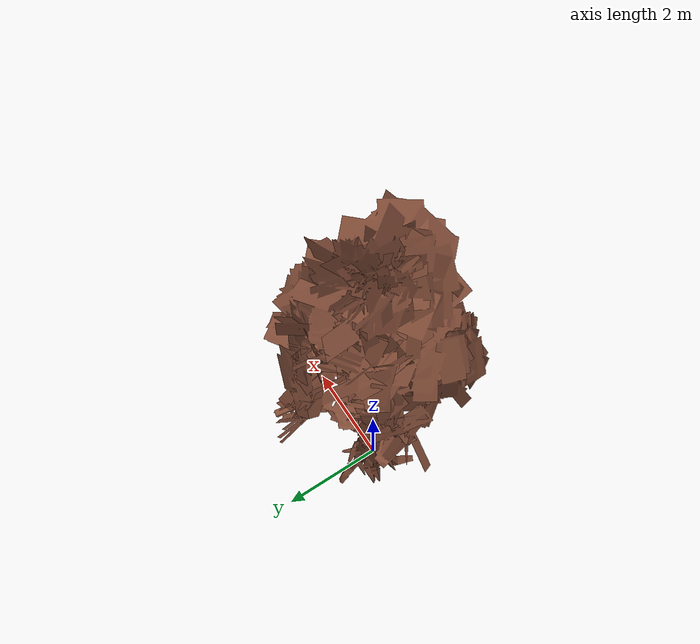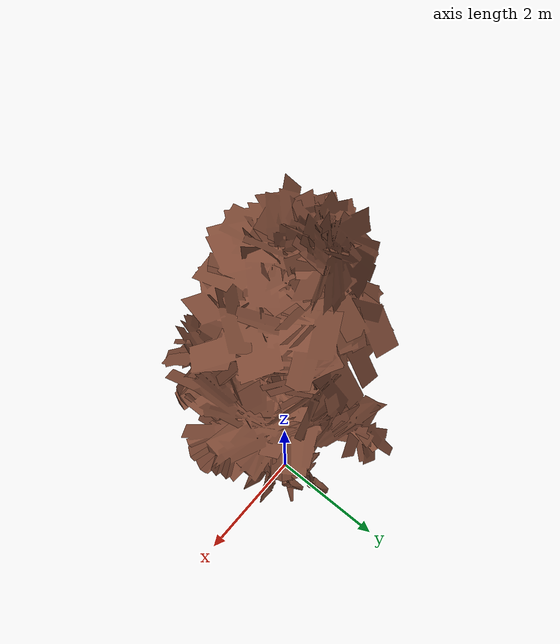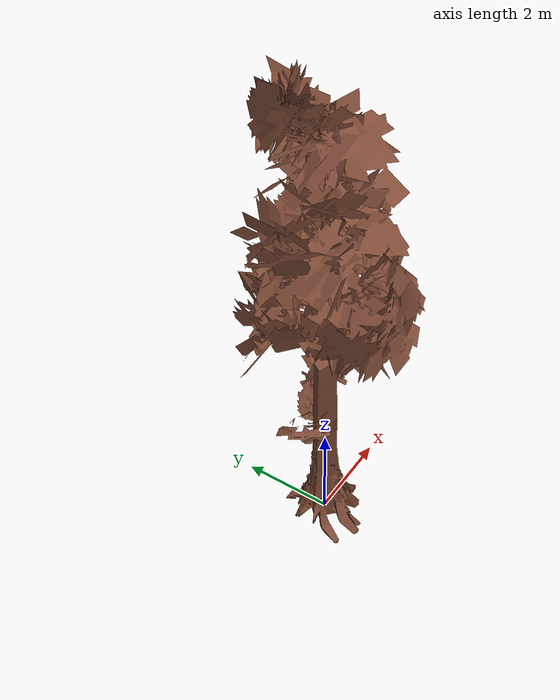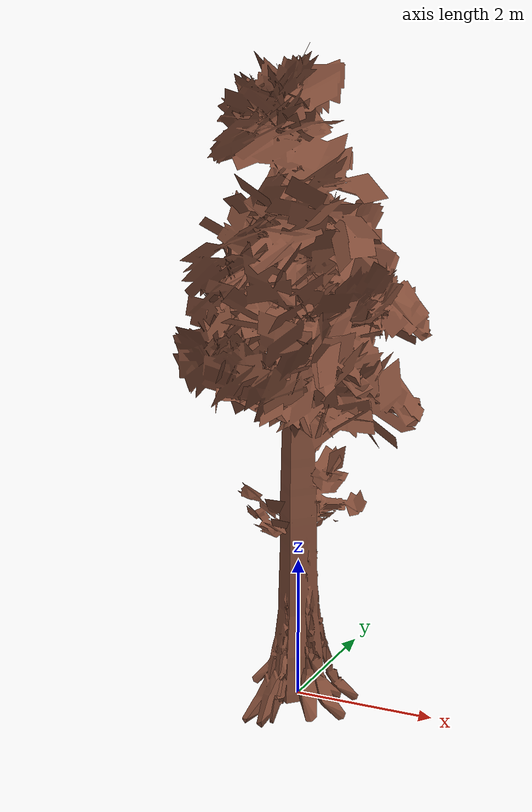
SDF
<?xml version="1.0" ?>
<sdf version="1.5">
  <model name="sequoia">
    <static>true</static>
    <link name="link">
      <collision name='collision_trunk'>
        <pose>0 0 2 0 -0 0</pose>
        <geometry>
          <cylinder>
            <radius>0.5</radius>
            <length>4</length>
          </cylinder>
        </geometry>
      </collision>
      <collision name='collision_top'>
        <pose>0 0 6.5 0 -0 0</pose>
        <geometry>
          <box>
            <size>3 3 5</size>
          </box>
        </geometry>
      </collision>

      <visual name="visual">
        <pose>0 0 0 0 0 0</pose>
        <geometry>
          <mesh>
            <uri>model://sequoia/meshes/sequoia_lowpoly.dae</uri>
          </mesh>
        </geometry>
        <material>
          <script>
            <uri>model://sequoia/materials/scripts</uri>
            <uri>model://sequoia/materials/textures</uri>
            <name>trees/sequoia</name>
          </script>
        </material>
      </visual>

    </link>
  </model>
</sdf>
